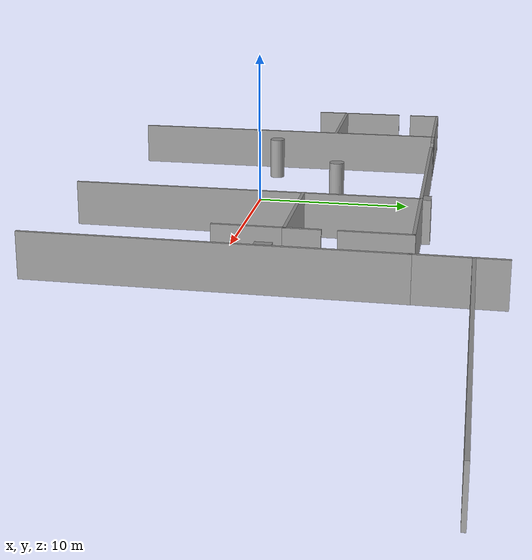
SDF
<sdf version="1.6">
 <world name="default">
  <model name="grey_wall_0_clone_0_0_clone_clone">
   <link name="link">
    <pose>-0.251263 -0.001927 1.4 0 -0 0</pose>
    <inertial>
     <mass>1</mass>
     <inertia><ixx>1</ixx><ixy>0</ixy><ixz>0</ixz><iyy>1</iyy><iyz>0</iyz><izz>1</izz></inertia>
    </inertial>
    <visual name="visual">
     <cast_shadows>0</cast_shadows>
     <geometry><box><size>7.4 0.2 2.8</size></box></geometry>
     <material>
      <script>
       <uri>model://grey_wall/materials/scripts</uri>
       <uri>model://grey_wall/materials/textures</uri>
       <name>vrc/grey_wall</name>
      </script>
      <ambient>1 1 1 1</ambient>
      <diffuse>1 1 1 1</diffuse>
      <specular>0 0 0 1</specular>
      <emissive>0 0 0 1</emissive>
      <shader type="vertex"><normal_map>__default__</normal_map></shader>
     </material>
    </visual>
    <collision name="collision">
     <geometry><box><size>7.4 0.2 2.8</size></box></geometry>
     <surface>
      <friction>
       <ode><mu>1</mu><mu2>1</mu2><fdir1>0 0 0</fdir1><slip1>0</slip1><slip2>0</slip2></ode>
       <torsional>
        <coefficient>1</coefficient>
        <patch_radius>0</patch_radius>
        <surface_radius>0</surface_radius>
        <use_patch_radius>1</use_patch_radius>
        <ode><slip>0</slip></ode>
       </torsional>
      </friction>
      <bounce><restitution_coefficient>0</restitution_coefficient><threshold>1e+06</threshold></bounce>
      <contact>
       <collide_without_contact>0</collide_without_contact>
       <collide_without_contact_bitmask>1</collide_without_contact_bitmask>
       <collide_bitmask>1</collide_bitmask>
       <ode>
        <soft_cfm>0</soft_cfm>
        <soft_erp>0.2</soft_erp>
        <kp>1e+13</kp>
        <kd>1</kd>
        <max_vel>0.01</max_vel>
        <min_depth>0</min_depth>
       </ode>
       <bullet>
        <split_impulse>1</split_impulse>
        <split_impulse_penetration_threshold>-0.01</split_impulse_penetration_threshold>
        <soft_cfm>0</soft_cfm>
        <soft_erp>0.2</soft_erp>
        <kp>1e+13</kp>
        <kd>1</kd>
       </bullet>
      </contact>
     </surface>
    </collision>
   </link>
   <static>1</static>
   <pose>11.4392 4.08832 0 0 -0 0</pose>
  </model>
  <model name="grey_wall_0_clone_0_0_clone_clone_clone">
   <link name="link">
    <pose>-0.251263 -0.001927 1.4 0 -0 0</pose>
    <inertial>
     <mass>1</mass>
     <inertia><ixx>1</ixx><ixy>0</ixy><ixz>0</ixz><iyy>1</iyy><iyz>0</iyz><izz>1</izz></inertia>
    </inertial>
    <visual name="visual">
     <cast_shadows>0</cast_shadows>
     <geometry><box><size>7.4 0.2 2.8</size></box></geometry>
     <material>
      <script>
       <uri>model://grey_wall/materials/scripts</uri>
       <uri>model://grey_wall/materials/textures</uri>
       <name>vrc/grey_wall</name>
      </script>
      <ambient>1 1 1 1</ambient>
      <diffuse>1 1 1 1</diffuse>
      <specular>0 0 0 1</specular>
      <emissive>0 0 0 1</emissive>
      <shader type="vertex"><normal_map>__default__</normal_map></shader>
     </material>
    </visual>
    <collision name="collision">
     <geometry><box><size>7.4 0.2 2.8</size></box></geometry>
     <surface>
      <friction>
       <ode><mu>1</mu><mu2>1</mu2><fdir1>0 0 0</fdir1><slip1>0</slip1><slip2>0</slip2></ode>
       <torsional>
        <coefficient>1</coefficient>
        <patch_radius>0</patch_radius>
        <surface_radius>0</surface_radius>
        <use_patch_radius>1</use_patch_radius>
        <ode><slip>0</slip></ode>
       </torsional>
      </friction>
      <bounce><restitution_coefficient>0</restitution_coefficient><threshold>1e+06</threshold></bounce>
      <contact>
       <collide_without_contact>0</collide_without_contact>
       <collide_without_contact_bitmask>1</collide_without_contact_bitmask>
       <collide_bitmask>1</collide_bitmask>
       <ode>
        <soft_cfm>0</soft_cfm>
        <soft_erp>0.2</soft_erp>
        <kp>1e+13</kp>
        <kd>1</kd>
        <max_vel>0.01</max_vel>
        <min_depth>0</min_depth>
       </ode>
       <bullet>
        <split_impulse>1</split_impulse>
        <split_impulse_penetration_threshold>-0.01</split_impulse_penetration_threshold>
        <soft_cfm>0</soft_cfm>
        <soft_erp>0.2</soft_erp>
        <kp>1e+13</kp>
        <kd>1</kd>
       </bullet>
      </contact>
     </surface>
    </collision>
   </link>
   <static>1</static>
   <pose>11.4788 11.2922 0 0 -0 0</pose>
  </model>
  <model name="g2_clone_0_0_clone">
   <link name="link">
    <pose>0 0 1.4 0 -0 0</pose>
    <inertial>
     <mass>1</mass>
     <inertia><ixx>1</ixx><ixy>0</ixy><ixz>0</ixz><iyy>1</iyy><iyz>0</iyz><izz>1</izz></inertia>
    </inertial>
    <visual name="visual">
     <cast_shadows>0</cast_shadows>
     <geometry><box><size>21.8 0.2 2.8</size></box></geometry>
     <material>
      <script>
       <uri>model://grey_wall/materials/scripts</uri>
       <uri>model://grey_wall/materials/textures</uri>
       <name>vrc/grey_wall</name>
      </script>
      <ambient>1 1 1 1</ambient>
      <diffuse>1 1 1 1</diffuse>
      <specular>0 0 0 1</specular>
      <emissive>0 0 0 1</emissive>
      <shader type="vertex"><normal_map>__default__</normal_map></shader>
     </material>
    </visual>
    <collision name="collision">
     <geometry><box><size>21.8 0.2 2.8</size></box></geometry>
     <surface>
      <friction>
       <ode><mu>1</mu><mu2>1</mu2><fdir1>0 0 0</fdir1><slip1>0</slip1><slip2>0</slip2></ode>
       <torsional>
        <coefficient>1</coefficient>
        <patch_radius>0</patch_radius>
        <surface_radius>0</surface_radius>
        <use_patch_radius>1</use_patch_radius>
        <ode><slip>0</slip></ode>
       </torsional>
      </friction>
      <bounce><restitution_coefficient>0</restitution_coefficient><threshold>1e+06</threshold></bounce>
      <contact>
       <collide_without_contact>0</collide_without_contact>
       <collide_without_contact_bitmask>1</collide_without_contact_bitmask>
       <collide_bitmask>1</collide_bitmask>
       <ode>
        <soft_cfm>0</soft_cfm>
        <soft_erp>0.2</soft_erp>
        <kp>1e+13</kp>
        <kd>1</kd>
        <max_vel>0.01</max_vel>
        <min_depth>0</min_depth>
       </ode>
       <bullet>
        <split_impulse>1</split_impulse>
        <split_impulse_penetration_threshold>-0.01</split_impulse_penetration_threshold>
        <soft_cfm>0</soft_cfm>
        <soft_erp>0.2</soft_erp>
        <kp>1e+13</kp>
        <kd>1</kd>
       </bullet>
      </contact>
     </surface>
    </collision>
   </link>
   <static>1</static>
   <pose>-9.04445 0.475213 0 0 0 -1.57584</pose>
  </model>
  <model name="g2_clone_0_0_0">
   <link name="link">
    <pose>0 0 1.4 0 -0 0</pose>
    <inertial>
     <mass>1</mass>
     <inertia><ixx>1</ixx><ixy>0</ixy><ixz>0</ixz><iyy>1</iyy><iyz>0</iyz><izz>1</izz></inertia>
    </inertial>
    <visual name="visual">
     <cast_shadows>0</cast_shadows>
     <geometry><box><size>21.8 0.2 2.8</size></box></geometry>
     <material>
      <script>
       <uri>model://grey_wall/materials/scripts</uri>
       <uri>model://grey_wall/materials/textures</uri>
       <name>vrc/grey_wall</name>
      </script>
      <ambient>1 1 1 1</ambient>
      <diffuse>1 1 1 1</diffuse>
      <specular>0 0 0 1</specular>
      <emissive>0 0 0 1</emissive>
      <shader type="vertex"><normal_map>__default__</normal_map></shader>
     </material>
    </visual>
    <collision name="collision">
     <geometry><box><size>21.8 0.2 2.8</size></box></geometry>
     <surface>
      <friction>
       <ode><mu>1</mu><mu2>1</mu2><fdir1>0 0 0</fdir1><slip1>0</slip1><slip2>0</slip2></ode>
       <torsional>
        <coefficient>1</coefficient>
        <patch_radius>0</patch_radius>
        <surface_radius>0</surface_radius>
        <use_patch_radius>1</use_patch_radius>
        <ode><slip>0</slip></ode>
       </torsional>
      </friction>
      <bounce><restitution_coefficient>0</restitution_coefficient><threshold>1e+06</threshold></bounce>
      <contact>
       <collide_without_contact>0</collide_without_contact>
       <collide_without_contact_bitmask>1</collide_without_contact_bitmask>
       <collide_bitmask>1</collide_bitmask>
       <ode>
        <soft_cfm>0</soft_cfm>
        <soft_erp>0.2</soft_erp>
        <kp>1e+13</kp>
        <kd>1</kd>
        <max_vel>0.01</max_vel>
        <min_depth>0</min_depth>
       </ode>
       <bullet>
        <split_impulse>1</split_impulse>
        <split_impulse_penetration_threshold>-0.01</split_impulse_penetration_threshold>
        <soft_cfm>0</soft_cfm>
        <soft_erp>0.2</soft_erp>
        <kp>1e+13</kp>
        <kd>1</kd>
       </bullet>
      </contact>
     </surface>
    </collision>
   </link>
   <static>1</static>
   <pose>7.54974 0.473365 0 0 0 -1.57584</pose>
  </model>
  <model name="grey_wall_0_0_clone_0">
   <link name="link">
    <pose>0 0 1.4 0 -0 0</pose>
    <inertial>
     <mass>1</mass>
     <inertia><ixx>1</ixx><ixy>0</ixy><ixz>0</ixz><iyy>1</iyy><iyz>0</iyz><izz>1</izz></inertia>
    </inertial>
    <visual name="visual">
     <cast_shadows>0</cast_shadows>
     <geometry><box><size>7.4 0.2 2.8</size></box></geometry>
     <material>
      <script>
       <uri>model://grey_wall/materials/scripts</uri>
       <uri>model://grey_wall/materials/textures</uri>
       <name>vrc/grey_wall</name>
      </script>
      <ambient>1 1 1 1</ambient>
      <diffuse>1 1 1 1</diffuse>
      <specular>0 0 0 1</specular>
      <emissive>0 0 0 1</emissive>
      <shader type="vertex"><normal_map>__default__</normal_map></shader>
     </material>
    </visual>
    <collision name="collision">
     <geometry><box><size>7.4 0.2 2.8</size></box></geometry>
     <surface>
      <friction>
       <ode><mu>1</mu><mu2>1</mu2><fdir1>0 0 0</fdir1><slip1>0</slip1><slip2>0</slip2></ode>
       <torsional>
        <coefficient>1</coefficient>
        <patch_radius>0</patch_radius>
        <surface_radius>0</surface_radius>
        <use_patch_radius>1</use_patch_radius>
        <ode><slip>0</slip></ode>
       </torsional>
      </friction>
      <bounce><restitution_coefficient>0</restitution_coefficient><threshold>1e+06</threshold></bounce>
      <contact>
       <collide_without_contact>0</collide_without_contact>
       <collide_without_contact_bitmask>1</collide_without_contact_bitmask>
       <collide_bitmask>1</collide_bitmask>
       <ode>
        <soft_cfm>0</soft_cfm>
        <soft_erp>0.2</soft_erp>
        <kp>1e+13</kp>
        <kd>1</kd>
        <max_vel>0.01</max_vel>
        <min_depth>0</min_depth>
       </ode>
       <bullet>
        <split_impulse>1</split_impulse>
        <split_impulse_penetration_threshold>-0.01</split_impulse_penetration_threshold>
        <soft_cfm>0</soft_cfm>
        <soft_erp>0.2</soft_erp>
        <kp>1e+13</kp>
        <kd>1</kd>
       </bullet>
      </contact>
     </surface>
    </collision>
   </link>
   <static>1</static>
   <pose>-12.6294 4.10196 0 0 -0 0</pose>
  </model>
  <model name="grey_wall_0_0_clone_1">
   <link name="link">
    <pose>0 0 1.4 0 -0 0</pose>
    <inertial>
     <mass>1</mass>
     <inertia><ixx>1</ixx><ixy>0</ixy><ixz>0</ixz><iyy>1</iyy><iyz>0</iyz><izz>1</izz></inertia>
    </inertial>
    <visual name="visual">
     <cast_shadows>0</cast_shadows>
     <geometry><box><size>7.4 0.2 2.8</size></box></geometry>
     <material>
      <script>
       <uri>model://grey_wall/materials/scripts</uri>
       <uri>model://grey_wall/materials/textures</uri>
       <name>vrc/grey_wall</name>
      </script>
      <ambient>1 1 1 1</ambient>
      <diffuse>1 1 1 1</diffuse>
      <specular>0 0 0 1</specular>
      <emissive>0 0 0 1</emissive>
      <shader type="vertex"><normal_map>__default__</normal_map></shader>
     </material>
    </visual>
    <collision name="collision">
     <geometry><box><size>7.4 0.2 2.8</size></box></geometry>
     <surface>
      <friction>
       <ode><mu>1</mu><mu2>1</mu2><fdir1>0 0 0</fdir1><slip1>0</slip1><slip2>0</slip2></ode>
       <torsional>
        <coefficient>1</coefficient>
        <patch_radius>0</patch_radius>
        <surface_radius>0</surface_radius>
        <use_patch_radius>1</use_patch_radius>
        <ode><slip>0</slip></ode>
       </torsional>
      </friction>
      <bounce><restitution_coefficient>0</restitution_coefficient><threshold>1e+06</threshold></bounce>
      <contact>
       <collide_without_contact>0</collide_without_contact>
       <collide_without_contact_bitmask>1</collide_without_contact_bitmask>
       <collide_bitmask>1</collide_bitmask>
       <ode>
        <soft_cfm>0</soft_cfm>
        <soft_erp>0.2</soft_erp>
        <kp>1e+13</kp>
        <kd>1</kd>
        <max_vel>0.01</max_vel>
        <min_depth>0</min_depth>
       </ode>
       <bullet>
        <split_impulse>1</split_impulse>
        <split_impulse_penetration_threshold>-0.01</split_impulse_penetration_threshold>
        <soft_cfm>0</soft_cfm>
        <soft_erp>0.2</soft_erp>
        <kp>1e+13</kp>
        <kd>1</kd>
       </bullet>
      </contact>
     </surface>
    </collision>
   </link>
   <static>1</static>
   <pose>-12.5933 11.2689 0 0 -0 0</pose>
  </model>
  <model name="g3_clone_clone_0_clone_0_0_0_0_0_0_clone_clone_clone_0_clone_0_clone_0_clone_0">
   <link name="link">
    <pose>1.55996 -1.33829 1.4 0 -0 0.001589</pose>
    <inertial>
     <mass>1</mass>
     <inertia><ixx>1</ixx><ixy>0</ixy><ixz>0</ixz><iyy>1</iyy><iyz>0</iyz><izz>1</izz></inertia>
    </inertial>
    <visual name="visual">
     <cast_shadows>0</cast_shadows>
     <geometry><box><size>2 0.2 2.8</size></box></geometry>
     <material>
      <script>
       <uri>model://grey_wall/materials/scripts</uri>
       <uri>model://grey_wall/materials/textures</uri>
       <name>vrc/grey_wall</name>
      </script>
      <ambient>1 1 1 1</ambient>
      <diffuse>1 1 1 1</diffuse>
      <specular>0 0 0 1</specular>
      <emissive>0 0 0 1</emissive>
      <shader type="vertex"><normal_map>__default__</normal_map></shader>
     </material>
    </visual>
    <collision name="collision">
     <geometry><box><size>2 0.2 2.8</size></box></geometry>
     <surface>
      <friction>
       <ode><mu>1</mu><mu2>1</mu2><fdir1>0 0 0</fdir1><slip1>0</slip1><slip2>0</slip2></ode>
       <torsional>
        <coefficient>1</coefficient>
        <patch_radius>0</patch_radius>
        <surface_radius>0</surface_radius>
        <use_patch_radius>1</use_patch_radius>
        <ode><slip>0</slip></ode>
       </torsional>
      </friction>
      <bounce><restitution_coefficient>0</restitution_coefficient><threshold>1e+06</threshold></bounce>
      <contact>
       <collide_without_contact>0</collide_without_contact>
       <collide_without_contact_bitmask>1</collide_without_contact_bitmask>
       <collide_bitmask>1</collide_bitmask>
       <ode>
        <soft_cfm>0</soft_cfm>
        <soft_erp>0.2</soft_erp>
        <kp>1e+13</kp>
        <kd>1</kd>
        <max_vel>0.01</max_vel>
        <min_depth>0</min_depth>
       </ode>
       <bullet>
        <split_impulse>1</split_impulse>
        <split_impulse_penetration_threshold>-0.01</split_impulse_penetration_threshold>
        <soft_cfm>0</soft_cfm>
        <soft_erp>0.2</soft_erp>
        <kp>1e+13</kp>
        <kd>1</kd>
       </bullet>
      </contact>
     </surface>
    </collision>
   </link>
   <static>1</static>
   <pose>-9.66867 12.5986 0 0 -0 0.011271</pose>
  </model>
  <model name="g1_clone_1_1_0">
   <link name="link">
    <pose>0.251458 0.000378 1.4 0 -0 0</pose>
    <inertial>
     <mass>1</mass>
     <inertia><ixx>1</ixx><ixy>0</ixy><ixz>0</ixz><iyy>1</iyy><iyz>0</iyz><izz>1</izz></inertia>
    </inertial>
    <visual name="visual">
     <cast_shadows>0</cast_shadows>
     <geometry><box><size>13.5 0.2 2.8</size></box></geometry>
     <material>
      <script>
       <uri>model://grey_wall/materials/scripts</uri>
       <uri>model://grey_wall/materials/textures</uri>
       <name>vrc/grey_wall</name>
      </script>
      <ambient>1 1 1 1</ambient>
      <diffuse>1 1 1 1</diffuse>
      <specular>0 0 0 1</specular>
      <emissive>0 0 0 1</emissive>
      <shader type="vertex"><normal_map>__default__</normal_map></shader>
     </material>
    </visual>
    <collision name="collision">
     <geometry><box><size>13.5 0.2 2.8</size></box></geometry>
     <surface>
      <friction>
       <ode><mu>1</mu><mu2>1</mu2><fdir1>0 0 0</fdir1><slip1>0</slip1><slip2>0</slip2></ode>
       <torsional>
        <coefficient>1</coefficient>
        <patch_radius>0</patch_radius>
        <surface_radius>0</surface_radius>
        <use_patch_radius>1</use_patch_radius>
        <ode><slip>0</slip></ode>
       </torsional>
      </friction>
      <bounce><restitution_coefficient>0</restitution_coefficient><threshold>1e+06</threshold></bounce>
      <contact>
       <collide_without_contact>0</collide_without_contact>
       <collide_without_contact_bitmask>1</collide_without_contact_bitmask>
       <collide_bitmask>1</collide_bitmask>
       <ode>
        <soft_cfm>0</soft_cfm>
        <soft_erp>0.2</soft_erp>
        <kp>1e+13</kp>
        <kd>1</kd>
        <max_vel>0.01</max_vel>
        <min_depth>0</min_depth>
       </ode>
       <bullet>
        <split_impulse>1</split_impulse>
        <split_impulse_penetration_threshold>-0.01</split_impulse_penetration_threshold>
        <soft_cfm>0</soft_cfm>
        <soft_erp>0.2</soft_erp>
        <kp>1e+13</kp>
        <kd>1</kd>
       </bullet>
      </contact>
     </surface>
    </collision>
   </link>
   <static>1</static>
   <pose>0.70866 11.287 0 0 -0 0</pose>
  </model>
  <model name="g2_clone_0_0_clone_clone_clone">
   <link name="link">
    <pose>0 0 1.4 0 -0 0</pose>
    <inertial>
     <mass>1</mass>
     <inertia><ixx>1</ixx><ixy>0</ixy><ixz>0</ixz><iyy>1</iyy><iyz>0</iyz><izz>1</izz></inertia>
    </inertial>
    <visual name="visual">
     <cast_shadows>0</cast_shadows>
     <geometry><box><size>21.8 0.2 2.8</size></box></geometry>
     <material>
      <script>
       <uri>model://grey_wall/materials/scripts</uri>
       <uri>model://grey_wall/materials/textures</uri>
       <name>vrc/grey_wall</name>
      </script>
      <ambient>1 1 1 1</ambient>
      <diffuse>1 1 1 1</diffuse>
      <specular>0 0 0 1</specular>
      <emissive>0 0 0 1</emissive>
      <shader type="vertex"><normal_map>__default__</normal_map></shader>
     </material>
    </visual>
    <collision name="collision">
     <geometry><box><size>21.8 0.2 2.8</size></box></geometry>
     <surface>
      <friction>
       <ode><mu>1</mu><mu2>1</mu2><fdir1>0 0 0</fdir1><slip1>0</slip1><slip2>0</slip2></ode>
       <torsional>
        <coefficient>1</coefficient>
        <patch_radius>0</patch_radius>
        <surface_radius>0</surface_radius>
        <use_patch_radius>1</use_patch_radius>
        <ode><slip>0</slip></ode>
       </torsional>
      </friction>
      <bounce><restitution_coefficient>0</restitution_coefficient><threshold>1e+06</threshold></bounce>
      <contact>
       <collide_without_contact>0</collide_without_contact>
       <collide_without_contact_bitmask>1</collide_without_contact_bitmask>
       <collide_bitmask>1</collide_bitmask>
       <ode>
        <soft_cfm>0</soft_cfm>
        <soft_erp>0.2</soft_erp>
        <kp>1e+13</kp>
        <kd>1</kd>
        <max_vel>0.01</max_vel>
        <min_depth>0</min_depth>
       </ode>
       <bullet>
        <split_impulse>1</split_impulse>
        <split_impulse_penetration_threshold>-0.01</split_impulse_penetration_threshold>
        <soft_cfm>0</soft_cfm>
        <soft_erp>0.2</soft_erp>
        <kp>1e+13</kp>
        <kd>1</kd>
       </bullet>
      </contact>
     </surface>
    </collision>
   </link>
   <static>1</static>
   <pose>18.07 0.480125 0 0 0 -1.57584</pose>
  </model>
  <model name="g3_clone_clone_0_clone_0_0_0_0_0_0_clone_clone_clone_0_clone_0_clone_1_0">
   <link name="link">
    <pose>0.277892 -0.062462 1.4 0 -0 0</pose>
    <inertial>
     <mass>1</mass>
     <inertia><ixx>1</ixx><ixy>0</ixy><ixz>0</ixz><iyy>1</iyy><iyz>0</iyz><izz>1</izz></inertia>
    </inertial>
    <visual name="visual">
     <cast_shadows>0</cast_shadows>
     <geometry><box><size>2.2 0.2 2.8</size></box></geometry>
     <material>
      <script>
       <uri>model://grey_wall/materials/scripts</uri>
       <uri>model://grey_wall/materials/textures</uri>
       <name>vrc/grey_wall</name>
      </script>
      <ambient>1 1 1 1</ambient>
      <diffuse>1 1 1 1</diffuse>
      <specular>0 0 0 1</specular>
      <emissive>0 0 0 1</emissive>
      <shader type="vertex"><normal_map>__default__</normal_map></shader>
     </material>
    </visual>
    <collision name="collision">
     <geometry><box><size>2.2 0.2 2.8</size></box></geometry>
     <surface>
      <friction>
       <ode><mu>1</mu><mu2>1</mu2><fdir1>0 0 0</fdir1><slip1>0</slip1><slip2>0</slip2></ode>
       <torsional>
        <coefficient>1</coefficient>
        <patch_radius>0</patch_radius>
        <surface_radius>0</surface_radius>
        <use_patch_radius>1</use_patch_radius>
        <ode><slip>0</slip></ode>
       </torsional>
      </friction>
      <bounce><restitution_coefficient>0</restitution_coefficient><threshold>1e+06</threshold></bounce>
      <contact>
       <collide_without_contact>0</collide_without_contact>
       <collide_without_contact_bitmask>1</collide_without_contact_bitmask>
       <collide_bitmask>1</collide_bitmask>
       <ode>
        <soft_cfm>0</soft_cfm>
        <soft_erp>0.2</soft_erp>
        <kp>1e+13</kp>
        <kd>1</kd>
        <max_vel>0.01</max_vel>
        <min_depth>0</min_depth>
       </ode>
       <bullet>
        <split_impulse>1</split_impulse>
        <split_impulse_penetration_threshold>-0.01</split_impulse_penetration_threshold>
        <soft_cfm>0</soft_cfm>
        <soft_erp>0.2</soft_erp>
        <kp>1e+13</kp>
        <kd>1</kd>
       </bullet>
      </contact>
     </surface>
    </collision>
   </link>
   <static>1</static>
   <pose>-16.1363 10.5498 0 0 0 -1.57614</pose>
  </model>
  <model name="g3_clone_clone_0_0_0_0_0_clone_0_clone_0_clone_2_clone_0_clone_0">
   <link name="link">
    <pose>0.7232 0.251992 1.4 0 -0 0</pose>
    <inertial>
     <mass>1</mass>
     <inertia><ixx>1</ixx><ixy>0</ixy><ixz>0</ixz><iyy>1</iyy><iyz>0</iyz><izz>1</izz></inertia>
    </inertial>
    <visual name="visual">
     <cast_shadows>0</cast_shadows>
     <geometry><box><size>4.3 0.2 2.8</size></box></geometry>
     <material>
      <script>
       <uri>model://grey_wall/materials/scripts</uri>
       <uri>model://grey_wall/materials/textures</uri>
       <name>vrc/grey_wall</name>
      </script>
      <ambient>1 1 1 1</ambient>
      <diffuse>1 1 1 1</diffuse>
      <specular>0 0 0 1</specular>
      <emissive>0 0 0 1</emissive>
      <shader type="vertex"><normal_map>__default__</normal_map></shader>
     </material>
    </visual>
    <collision name="collision">
     <geometry><box><size>4.3 0.2 2.8</size></box></geometry>
     <surface>
      <friction>
       <ode><mu>1</mu><mu2>1</mu2><fdir1>0 0 0</fdir1><slip1>0</slip1><slip2>0</slip2></ode>
       <torsional>
        <coefficient>1</coefficient>
        <patch_radius>0</patch_radius>
        <surface_radius>0</surface_radius>
        <use_patch_radius>1</use_patch_radius>
        <ode><slip>0</slip></ode>
       </torsional>
      </friction>
      <bounce><restitution_coefficient>0</restitution_coefficient><threshold>1e+06</threshold></bounce>
      <contact>
       <collide_without_contact>0</collide_without_contact>
       <collide_without_contact_bitmask>1</collide_without_contact_bitmask>
       <collide_bitmask>1</collide_bitmask>
       <ode>
        <soft_cfm>0</soft_cfm>
        <soft_erp>0.2</soft_erp>
        <kp>1e+13</kp>
        <kd>1</kd>
        <max_vel>0.01</max_vel>
        <min_depth>0</min_depth>
       </ode>
       <bullet>
        <split_impulse>1</split_impulse>
        <split_impulse_penetration_threshold>-0.01</split_impulse_penetration_threshold>
        <soft_cfm>0</soft_cfm>
        <soft_erp>0.2</soft_erp>
        <kp>1e+13</kp>
        <kd>1</kd>
       </bullet>
      </contact>
     </surface>
    </collision>
   </link>
   <static>1</static>
   <pose>-16.4688 6.86867 0 0 0 -1.57728</pose>
  </model>
  <model name="g3_clone_clone_0_clone_0_0_0_0_0_0_clone_clone_clone_0_clone_0_clone_1_clone_0_clone_clone">
   <link name="link">
    <pose>0.181182 -0.058849 1.4 0 -0 0</pose>
    <inertial>
     <mass>1</mass>
     <inertia><ixx>1</ixx><ixy>0</ixy><ixz>0</ixz><iyy>1</iyy><iyz>0</iyz><izz>1</izz></inertia>
    </inertial>
    <visual name="visual">
     <cast_shadows>0</cast_shadows>
     <geometry><box><size>3.5 0.2 2.8</size></box></geometry>
     <material>
      <script>
       <uri>model://grey_wall/materials/scripts</uri>
       <uri>model://grey_wall/materials/textures</uri>
       <name>vrc/grey_wall</name>
      </script>
      <ambient>1 1 1 1</ambient>
      <diffuse>1 1 1 1</diffuse>
      <specular>0 0 0 1</specular>
      <emissive>0 0 0 1</emissive>
      <shader type="vertex"><normal_map>__default__</normal_map></shader>
     </material>
    </visual>
    <collision name="collision">
     <geometry><box><size>3.5 0.2 2.8</size></box></geometry>
     <surface>
      <friction>
       <ode><mu>1</mu><mu2>1</mu2><fdir1>0 0 0</fdir1><slip1>0</slip1><slip2>0</slip2></ode>
       <torsional>
        <coefficient>1</coefficient>
        <patch_radius>0</patch_radius>
        <surface_radius>0</surface_radius>
        <use_patch_radius>1</use_patch_radius>
        <ode><slip>0</slip></ode>
       </torsional>
      </friction>
      <bounce><restitution_coefficient>0</restitution_coefficient><threshold>1e+06</threshold></bounce>
      <contact>
       <collide_without_contact>0</collide_without_contact>
       <collide_without_contact_bitmask>1</collide_without_contact_bitmask>
       <collide_bitmask>1</collide_bitmask>
       <ode>
        <soft_cfm>0</soft_cfm>
        <soft_erp>0.2</soft_erp>
        <kp>1e+13</kp>
        <kd>1</kd>
        <max_vel>0.01</max_vel>
        <min_depth>0</min_depth>
       </ode>
       <bullet>
        <split_impulse>1</split_impulse>
        <split_impulse_penetration_threshold>-0.01</split_impulse_penetration_threshold>
        <soft_cfm>0</soft_cfm>
        <soft_erp>0.2</soft_erp>
        <kp>1e+13</kp>
        <kd>1</kd>
       </bullet>
      </contact>
     </surface>
    </collision>
   </link>
   <static>1</static>
   <pose>18.185 13.1082 0 0 0 -1.57614</pose>
  </model>
  <model name="g3_clone_clone_0_clone_0_0_0_0_0_0_clone_clone_clone_0_clone_0_clone_1_0_clone">
   <link name="link">
    <pose>0.277892 -0.062462 1.4 0 -0 0</pose>
    <inertial>
     <mass>1</mass>
     <inertia><ixx>1</ixx><ixy>0</ixy><ixz>0</ixz><iyy>1</iyy><iyz>0</iyz><izz>1</izz></inertia>
    </inertial>
    <visual name="visual">
     <cast_shadows>0</cast_shadows>
     <geometry><box><size>2.2 0.2 2.8</size></box></geometry>
     <material>
      <script>
       <uri>model://grey_wall/materials/scripts</uri>
       <uri>model://grey_wall/materials/textures</uri>
       <name>vrc/grey_wall</name>
      </script>
      <ambient>1 1 1 1</ambient>
      <diffuse>1 1 1 1</diffuse>
      <specular>0 0 0 1</specular>
      <emissive>0 0 0 1</emissive>
      <shader type="vertex"><normal_map>__default__</normal_map></shader>
     </material>
    </visual>
    <collision name="collision">
     <geometry><box><size>2.2 0.2 2.8</size></box></geometry>
     <surface>
      <friction>
       <ode><mu>1</mu><mu2>1</mu2><fdir1>0 0 0</fdir1><slip1>0</slip1><slip2>0</slip2></ode>
       <torsional>
        <coefficient>1</coefficient>
        <patch_radius>0</patch_radius>
        <surface_radius>0</surface_radius>
        <use_patch_radius>1</use_patch_radius>
        <ode><slip>0</slip></ode>
       </torsional>
      </friction>
      <bounce><restitution_coefficient>0</restitution_coefficient><threshold>1e+06</threshold></bounce>
      <contact>
       <collide_without_contact>0</collide_without_contact>
       <collide_without_contact_bitmask>1</collide_without_contact_bitmask>
       <collide_bitmask>1</collide_bitmask>
       <ode>
        <soft_cfm>0</soft_cfm>
        <soft_erp>0.2</soft_erp>
        <kp>1e+13</kp>
        <kd>1</kd>
        <max_vel>0.01</max_vel>
        <min_depth>0</min_depth>
       </ode>
       <bullet>
        <split_impulse>1</split_impulse>
        <split_impulse_penetration_threshold>-0.01</split_impulse_penetration_threshold>
        <soft_cfm>0</soft_cfm>
        <soft_erp>0.2</soft_erp>
        <kp>1e+13</kp>
        <kd>1</kd>
       </bullet>
      </contact>
     </surface>
    </collision>
   </link>
   <static>1</static>
   <pose>-16.1741 3.36962 0 0 0 -1.57614</pose>
  </model>
  <model name="g3_clone_clone_0_0_0_0_0_clone_0_clone_0_clone_2_clone_0_clone_0_clone_0">
   <link name="link">
    <pose>0.7232 0.251992 1.4 0 -0 0</pose>
    <inertial>
     <mass>1</mass>
     <inertia><ixx>1</ixx><ixy>0</ixy><ixz>0</ixz><iyy>1</iyy><iyz>0</iyz><izz>1</izz></inertia>
    </inertial>
    <visual name="visual">
     <cast_shadows>0</cast_shadows>
     <geometry><box><size>4.3 0.2 2.8</size></box></geometry>
     <material>
      <script>
       <uri>model://grey_wall/materials/scripts</uri>
       <uri>model://grey_wall/materials/textures</uri>
       <name>vrc/grey_wall</name>
      </script>
      <ambient>1 1 1 1</ambient>
      <diffuse>1 1 1 1</diffuse>
      <specular>0 0 0 1</specular>
      <emissive>0 0 0 1</emissive>
      <shader type="vertex"><normal_map>__default__</normal_map></shader>
     </material>
    </visual>
    <collision name="collision">
     <geometry><box><size>4.3 0.2 2.8</size></box></geometry>
     <surface>
      <friction>
       <ode><mu>1</mu><mu2>1</mu2><fdir1>0 0 0</fdir1><slip1>0</slip1><slip2>0</slip2></ode>
       <torsional>
        <coefficient>1</coefficient>
        <patch_radius>0</patch_radius>
        <surface_radius>0</surface_radius>
        <use_patch_radius>1</use_patch_radius>
        <ode><slip>0</slip></ode>
       </torsional>
      </friction>
      <bounce><restitution_coefficient>0</restitution_coefficient><threshold>1e+06</threshold></bounce>
      <contact>
       <collide_without_contact>0</collide_without_contact>
       <collide_without_contact_bitmask>1</collide_without_contact_bitmask>
       <collide_bitmask>1</collide_bitmask>
       <ode>
        <soft_cfm>0</soft_cfm>
        <soft_erp>0.2</soft_erp>
        <kp>1e+13</kp>
        <kd>1</kd>
        <max_vel>0.01</max_vel>
        <min_depth>0</min_depth>
       </ode>
       <bullet>
        <split_impulse>1</split_impulse>
        <split_impulse_penetration_threshold>-0.01</split_impulse_penetration_threshold>
        <soft_cfm>0</soft_cfm>
        <soft_erp>0.2</soft_erp>
        <kp>1e+13</kp>
        <kd>1</kd>
       </bullet>
      </contact>
     </surface>
    </collision>
   </link>
   <static>1</static>
   <pose>14.5679 9.9628 0 0 0 -1.57728</pose>
  </model>
  <model name="g3_clone_clone_0_clone_0_0_0_0_0_0_clone_clone_clone_0_clone_0_clone_1_0_clone_0">
   <link name="link">
    <pose>0.277892 -0.062462 1.4 0 -0 0</pose>
    <inertial>
     <mass>1</mass>
     <inertia><ixx>1</ixx><ixy>0</ixy><ixz>0</ixz><iyy>1</iyy><iyz>0</iyz><izz>1</izz></inertia>
    </inertial>
    <visual name="visual">
     <cast_shadows>0</cast_shadows>
     <geometry><box><size>2.2 0.2 2.8</size></box></geometry>
     <material>
      <script>
       <uri>model://grey_wall/materials/scripts</uri>
       <uri>model://grey_wall/materials/textures</uri>
       <name>vrc/grey_wall</name>
      </script>
      <ambient>1 1 1 1</ambient>
      <diffuse>1 1 1 1</diffuse>
      <specular>0 0 0 1</specular>
      <emissive>0 0 0 1</emissive>
      <shader type="vertex"><normal_map>__default__</normal_map></shader>
     </material>
    </visual>
    <collision name="collision">
     <geometry><box><size>2.2 0.2 2.8</size></box></geometry>
     <surface>
      <friction>
       <ode><mu>1</mu><mu2>1</mu2><fdir1>0 0 0</fdir1><slip1>0</slip1><slip2>0</slip2></ode>
       <torsional>
        <coefficient>1</coefficient>
        <patch_radius>0</patch_radius>
        <surface_radius>0</surface_radius>
        <use_patch_radius>1</use_patch_radius>
        <ode><slip>0</slip></ode>
       </torsional>
      </friction>
      <bounce><restitution_coefficient>0</restitution_coefficient><threshold>1e+06</threshold></bounce>
      <contact>
       <collide_without_contact>0</collide_without_contact>
       <collide_without_contact_bitmask>1</collide_without_contact_bitmask>
       <collide_bitmask>1</collide_bitmask>
       <ode>
        <soft_cfm>0</soft_cfm>
        <soft_erp>0.2</soft_erp>
        <kp>1e+13</kp>
        <kd>1</kd>
        <max_vel>0.01</max_vel>
        <min_depth>0</min_depth>
       </ode>
       <bullet>
        <split_impulse>1</split_impulse>
        <split_impulse_penetration_threshold>-0.01</split_impulse_penetration_threshold>
        <soft_cfm>0</soft_cfm>
        <soft_erp>0.2</soft_erp>
        <kp>1e+13</kp>
        <kd>1</kd>
       </bullet>
      </contact>
     </surface>
    </collision>
   </link>
   <static>1</static>
   <pose>14.8583 5.35559 0 0 0 -1.57614</pose>
  </model>
  <model name="g3_clone_clone_0_0_0_0_0_clone_0_clone_0_clone_2_clone_0_clone_0_clone_0_clone">
   <link name="link">
    <pose>0.7232 0.251992 1.4 0 -0 0</pose>
    <inertial>
     <mass>1</mass>
     <inertia><ixx>1</ixx><ixy>0</ixy><ixz>0</ixz><iyy>1</iyy><iyz>0</iyz><izz>1</izz></inertia>
    </inertial>
    <visual name="visual">
     <cast_shadows>0</cast_shadows>
     <geometry><box><size>4.3 0.2 2.8</size></box></geometry>
     <material>
      <script>
       <uri>model://grey_wall/materials/scripts</uri>
       <uri>model://grey_wall/materials/textures</uri>
       <name>vrc/grey_wall</name>
      </script>
      <ambient>1 1 1 1</ambient>
      <diffuse>1 1 1 1</diffuse>
      <specular>0 0 0 1</specular>
      <emissive>0 0 0 1</emissive>
      <shader type="vertex"><normal_map>__default__</normal_map></shader>
     </material>
    </visual>
    <collision name="collision">
     <geometry><box><size>4.3 0.2 2.8</size></box></geometry>
     <surface>
      <friction>
       <ode><mu>1</mu><mu2>1</mu2><fdir1>0 0 0</fdir1><slip1>0</slip1><slip2>0</slip2></ode>
       <torsional>
        <coefficient>1</coefficient>
        <patch_radius>0</patch_radius>
        <surface_radius>0</surface_radius>
        <use_patch_radius>1</use_patch_radius>
        <ode><slip>0</slip></ode>
       </torsional>
      </friction>
      <bounce><restitution_coefficient>0</restitution_coefficient><threshold>1e+06</threshold></bounce>
      <contact>
       <collide_without_contact>0</collide_without_contact>
       <collide_without_contact_bitmask>1</collide_without_contact_bitmask>
       <collide_bitmask>1</collide_bitmask>
       <ode>
        <soft_cfm>0</soft_cfm>
        <soft_erp>0.2</soft_erp>
        <kp>1e+13</kp>
        <kd>1</kd>
        <max_vel>0.01</max_vel>
        <min_depth>0</min_depth>
       </ode>
       <bullet>
        <split_impulse>1</split_impulse>
        <split_impulse_penetration_threshold>-0.01</split_impulse_penetration_threshold>
        <soft_cfm>0</soft_cfm>
        <soft_erp>0.2</soft_erp>
        <kp>1e+13</kp>
        <kd>1</kd>
       </bullet>
      </contact>
     </surface>
    </collision>
   </link>
   <static>1</static>
   <pose>14.5271 2.76111 0 0 0 -1.57728</pose>
  </model>
  <model name="g1_clone_1_1_0_clone_0_0_clone_0_0_clone">
   <link name="link">
    <pose>1.12208 9.77176 1.4 0 -0 0</pose>
    <inertial>
     <mass>1</mass>
     <inertia><ixx>1</ixx><ixy>0</ixy><ixz>0</ixz><iyy>1</iyy><iyz>0</iyz><izz>1</izz></inertia>
    </inertial>
    <visual name="visual">
     <cast_shadows>0</cast_shadows>
     <geometry><box><size>21.8 0.2 2.8</size></box></geometry>
     <material>
      <script>
       <uri>model://grey_wall/materials/scripts</uri>
       <uri>model://grey_wall/materials/textures</uri>
       <name>vrc/grey_wall</name>
      </script>
      <ambient>1 1 1 1</ambient>
      <diffuse>1 1 1 1</diffuse>
      <specular>0 0 0 1</specular>
      <emissive>0 0 0 1</emissive>
      <shader type="vertex"><normal_map>__default__</normal_map></shader>
     </material>
    </visual>
    <collision name="collision">
     <geometry><box><size>21.8 0.2 2.8</size></box></geometry>
     <surface>
      <friction>
       <ode><mu>1</mu><mu2>1</mu2><fdir1>0 0 0</fdir1><slip1>0</slip1><slip2>0</slip2></ode>
       <torsional>
        <coefficient>1</coefficient>
        <patch_radius>0</patch_radius>
        <surface_radius>0</surface_radius>
        <use_patch_radius>1</use_patch_radius>
        <ode><slip>0</slip></ode>
       </torsional>
      </friction>
      <bounce><restitution_coefficient>0</restitution_coefficient><threshold>1e+06</threshold></bounce>
      <contact>
       <collide_without_contact>0</collide_without_contact>
       <collide_without_contact_bitmask>1</collide_without_contact_bitmask>
       <collide_bitmask>1</collide_bitmask>
       <ode>
        <soft_cfm>0</soft_cfm>
        <soft_erp>0.2</soft_erp>
        <kp>1e+13</kp>
        <kd>1</kd>
        <max_vel>0.01</max_vel>
        <min_depth>0</min_depth>
       </ode>
       <bullet>
        <split_impulse>1</split_impulse>
        <split_impulse_penetration_threshold>-0.01</split_impulse_penetration_threshold>
        <soft_cfm>0</soft_cfm>
        <soft_erp>0.2</soft_erp>
        <kp>1e+13</kp>
        <kd>1</kd>
       </bullet>
      </contact>
     </surface>
    </collision>
   </link>
   <static>1</static>
   <pose>27.8078 4.80354 0 0 -0 0</pose>
  </model>
  <model name="g2_clone_0_0_0_clone_clone_0_0_clone_clone_0">
   <link name="link">
    <pose>-1.56505 3.70936 1.4 0 -0 0</pose>
    <inertial>
     <mass>1</mass>
     <inertia><ixx>1</ixx><ixy>0</ixy><ixz>0</ixz><iyy>1</iyy><iyz>0</iyz><izz>1</izz></inertia>
    </inertial>
    <visual name="visual">
     <cast_shadows>0</cast_shadows>
     <geometry><box><size>2 0.2 2.8</size></box></geometry>
     <material>
      <script>
       <uri>model://grey_wall/materials/scripts</uri>
       <uri>model://grey_wall/materials/textures</uri>
       <name>vrc/grey_wall</name>
      </script>
      <ambient>1 1 1 1</ambient>
      <diffuse>1 1 1 1</diffuse>
      <specular>0 0 0 1</specular>
      <emissive>0 0 0 1</emissive>
      <shader type="vertex"><normal_map>__default__</normal_map></shader>
     </material>
    </visual>
    <collision name="collision">
     <geometry><box><size>2 0.2 2.8</size></box></geometry>
     <surface>
      <friction>
       <ode><mu>1</mu><mu2>1</mu2><fdir1>0 0 0</fdir1><slip1>0</slip1><slip2>0</slip2></ode>
       <torsional>
        <coefficient>1</coefficient>
        <patch_radius>0</patch_radius>
        <surface_radius>0</surface_radius>
        <use_patch_radius>1</use_patch_radius>
        <ode><slip>0</slip></ode>
       </torsional>
      </friction>
      <bounce><restitution_coefficient>0</restitution_coefficient><threshold>1e+06</threshold></bounce>
      <contact>
       <collide_without_contact>0</collide_without_contact>
       <collide_without_contact_bitmask>1</collide_without_contact_bitmask>
       <collide_bitmask>1</collide_bitmask>
       <ode>
        <soft_cfm>0</soft_cfm>
        <soft_erp>0.2</soft_erp>
        <kp>1e+13</kp>
        <kd>1</kd>
        <max_vel>0.01</max_vel>
        <min_depth>0</min_depth>
       </ode>
       <bullet>
        <split_impulse>1</split_impulse>
        <split_impulse_penetration_threshold>-0.01</split_impulse_penetration_threshold>
        <soft_cfm>0</soft_cfm>
        <soft_erp>0.2</soft_erp>
        <kp>1e+13</kp>
        <kd>1</kd>
       </bullet>
      </contact>
     </surface>
    </collision>
   </link>
   <static>1</static>
   <pose>14.4217 13.9279 0 0 0 -1.57584</pose>
  </model>
  <model name="unit_cylinder_0_1_0_clone_0">
   <link name="link">
    <pose>0.876728 0.324661 0.817505 0 -0 0</pose>
    <inertial>
     <mass>1</mass>
     <inertia><ixx>0.145833</ixx><ixy>0</ixy><ixz>0</ixz><iyy>0.145833</iyy><iyz>0</iyz><izz>0.125</izz></inertia>
    </inertial>
    <visual name="visual">
     <geometry><cylinder><radius>0.5</radius><length>2.8</length></cylinder></geometry>
     <material>
      <script><name>Gazebo/Grey</name><uri>file://media/materials/scripts/gazebo.material</uri></script>
      <ambient>0.3 0.3 0.3 1</ambient>
      <diffuse>0.7 0.7 0.7 1</diffuse>
      <specular>0.01 0.01 0.01 1</specular>
      <emissive>0 0 0 1</emissive>
      <shader type="vertex"><normal_map>__default__</normal_map></shader>
     </material>
    </visual>
    <collision name="collision">
     <geometry><cylinder><radius>0.5</radius><length>2.8</length></cylinder></geometry>
     <surface>
      <friction>
       <ode><mu>1</mu><mu2>1</mu2><fdir1>0 0 0</fdir1><slip1>0</slip1><slip2>0</slip2></ode>
       <torsional>
        <coefficient>1</coefficient>
        <patch_radius>0</patch_radius>
        <surface_radius>0</surface_radius>
        <use_patch_radius>1</use_patch_radius>
        <ode><slip>0</slip></ode>
       </torsional>
      </friction>
      <bounce><restitution_coefficient>0</restitution_coefficient><threshold>1e+06</threshold></bounce>
      <contact>
       <collide_without_contact>0</collide_without_contact>
       <collide_without_contact_bitmask>1</collide_without_contact_bitmask>
       <collide_bitmask>1</collide_bitmask>
       <ode>
        <soft_cfm>0</soft_cfm>
        <soft_erp>0.2</soft_erp>
        <kp>1e+13</kp>
        <kd>1</kd>
        <max_vel>0.01</max_vel>
        <min_depth>0</min_depth>
       </ode>
       <bullet>
        <split_impulse>1</split_impulse>
        <split_impulse_penetration_threshold>-0.01</split_impulse_penetration_threshold>
        <soft_cfm>0</soft_cfm>
        <soft_erp>0.2</soft_erp>
        <kp>1e+13</kp>
        <kd>1</kd>
       </bullet>
      </contact>
     </surface>
    </collision>
   </link>
   <static>0</static>
   <pose>-1.15725 4.89299 0.582488 0 0 -6.9e-05</pose>
  </model>
  <model name="unit_cylinder_0_1_0_clone_3">
   <link name="link">
    <pose>0.876728 0.324661 0.817505 0 -0 0</pose>
    <inertial>
     <mass>1</mass>
     <inertia><ixx>0.145833</ixx><ixy>0</ixy><ixz>0</ixz><iyy>0.145833</iyy><iyz>0</iyz><izz>0.125</izz></inertia>
    </inertial>
    <visual name="visual">
     <geometry><cylinder><radius>0.5</radius><length>2.8</length></cylinder></geometry>
     <material>
      <script><name>Gazebo/Grey</name><uri>file://media/materials/scripts/gazebo.material</uri></script>
      <ambient>0.3 0.3 0.3 1</ambient>
      <diffuse>0.7 0.7 0.7 1</diffuse>
      <specular>0.01 0.01 0.01 1</specular>
      <emissive>0 0 0 1</emissive>
      <shader type="vertex"><normal_map>__default__</normal_map></shader>
     </material>
    </visual>
    <collision name="collision">
     <geometry><cylinder><radius>0.5</radius><length>2.8</length></cylinder></geometry>
     <surface>
      <friction>
       <ode><mu>1</mu><mu2>1</mu2><fdir1>0 0 0</fdir1><slip1>0</slip1><slip2>0</slip2></ode>
       <torsional>
        <coefficient>1</coefficient>
        <patch_radius>0</patch_radius>
        <surface_radius>0</surface_radius>
        <use_patch_radius>1</use_patch_radius>
        <ode><slip>0</slip></ode>
       </torsional>
      </friction>
      <bounce><restitution_coefficient>0</restitution_coefficient><threshold>1e+06</threshold></bounce>
      <contact>
       <collide_without_contact>0</collide_without_contact>
       <collide_without_contact_bitmask>1</collide_without_contact_bitmask>
       <collide_bitmask>1</collide_bitmask>
       <ode>
        <soft_cfm>0</soft_cfm>
        <soft_erp>0.2</soft_erp>
        <kp>1e+13</kp>
        <kd>1</kd>
        <max_vel>0.01</max_vel>
        <min_depth>0</min_depth>
       </ode>
       <bullet>
        <split_impulse>1</split_impulse>
        <split_impulse_penetration_threshold>-0.01</split_impulse_penetration_threshold>
        <soft_cfm>0</soft_cfm>
        <soft_erp>0.2</soft_erp>
        <kp>1e+13</kp>
        <kd>1</kd>
       </bullet>
      </contact>
     </surface>
    </collision>
   </link>
   <static>0</static>
   <pose>-7.16008 -0.185829 0.582488 0 0 -5e-05</pose>
  </model>
  <model name="unit_box_0_0_clone_0_0_clone_2_clone">
   <link name="link">
    <pose>-7.83659 0.075446 3.84331 0 -0 0</pose>
    <inertial>
     <mass>1</mass>
     <inertia>
      <ixx>0.166667</ixx>
      <ixy>0</ixy>
      <ixz>0</ixz>
      <iyy>0.166667</iyy>
      <iyz>0</iyz>
      <izz>0.166667</izz>
     </inertia>
    </inertial>
    <visual name="visual">
     <geometry><box><size>1 0.5 2.8</size></box></geometry>
     <material>
      <script><name>Gazebo/Grey</name><uri>file://media/materials/scripts/gazebo.material</uri></script>
      <ambient>0.3 0.3 0.3 1</ambient>
      <diffuse>0.7 0.7 0.7 1</diffuse>
      <specular>0.01 0.01 0.01 1</specular>
      <emissive>0 0 0 1</emissive>
      <shader type="vertex"><normal_map>__default__</normal_map></shader>
     </material>
    </visual>
    <collision name="collision">
     <geometry><box><size>1 0.5 2.8</size></box></geometry>
     <surface>
      <friction>
       <ode><mu>1</mu><mu2>1</mu2><fdir1>0 0 0</fdir1><slip1>0</slip1><slip2>0</slip2></ode>
       <torsional>
        <coefficient>1</coefficient>
        <patch_radius>0</patch_radius>
        <surface_radius>0</surface_radius>
        <use_patch_radius>1</use_patch_radius>
        <ode><slip>0</slip></ode>
       </torsional>
      </friction>
      <bounce><restitution_coefficient>0</restitution_coefficient><threshold>1e+06</threshold></bounce>
      <contact>
       <collide_without_contact>0</collide_without_contact>
       <collide_without_contact_bitmask>1</collide_without_contact_bitmask>
       <collide_bitmask>1</collide_bitmask>
       <ode>
        <soft_cfm>0</soft_cfm>
        <soft_erp>0.2</soft_erp>
        <kp>1e+13</kp>
        <kd>1</kd>
        <max_vel>0.01</max_vel>
        <min_depth>0</min_depth>
       </ode>
       <bullet>
        <split_impulse>1</split_impulse>
        <split_impulse_penetration_threshold>-0.01</split_impulse_penetration_threshold>
        <soft_cfm>0</soft_cfm>
        <soft_erp>0.2</soft_erp>
        <kp>1e+13</kp>
        <kd>1</kd>
       </bullet>
      </contact>
     </surface>
    </collision>
   </link>
   <static>0</static>
   <pose>15.2646 11.5829 -2.44332 0 2e-06 6.1e-05</pose>
  </model>
  <model name="unit_box_0_0_clone_0_0_clone_2_clone_0_0_clone_clone">
   <link name="link">
    <pose>-7.83659 0.075446 3.84331 0 -0 0</pose>
    <inertial>
     <mass>1</mass>
     <inertia>
      <ixx>0.166667</ixx>
      <ixy>0</ixy>
      <ixz>0</ixz>
      <iyy>0.166667</iyy>
      <iyz>0</iyz>
      <izz>0.166667</izz>
     </inertia>
    </inertial>
    <visual name="visual">
     <geometry><box><size>0.5 1 2.8</size></box></geometry>
     <material>
      <script><name>Gazebo/Grey</name><uri>file://media/materials/scripts/gazebo.material</uri></script>
      <ambient>0.3 0.3 0.3 1</ambient>
      <diffuse>0.7 0.7 0.7 1</diffuse>
      <specular>0.01 0.01 0.01 1</specular>
      <emissive>0 0 0 1</emissive>
      <shader type="vertex"><normal_map>__default__</normal_map></shader>
     </material>
    </visual>
    <collision name="collision">
     <geometry><box><size>0.5 1 2.8</size></box></geometry>
     <surface>
      <friction>
       <ode><mu>1</mu><mu2>1</mu2><fdir1>0 0 0</fdir1><slip1>0</slip1><slip2>0</slip2></ode>
       <torsional>
        <coefficient>1</coefficient>
        <patch_radius>0</patch_radius>
        <surface_radius>0</surface_radius>
        <use_patch_radius>1</use_patch_radius>
        <ode><slip>0</slip></ode>
       </torsional>
      </friction>
      <bounce><restitution_coefficient>0</restitution_coefficient><threshold>1e+06</threshold></bounce>
      <contact>
       <collide_without_contact>0</collide_without_contact>
       <collide_without_contact_bitmask>1</collide_without_contact_bitmask>
       <collide_bitmask>1</collide_bitmask>
       <ode>
        <soft_cfm>0</soft_cfm>
        <soft_erp>0.2</soft_erp>
        <kp>1e+13</kp>
        <kd>1</kd>
        <max_vel>0.01</max_vel>
        <min_depth>0</min_depth>
       </ode>
       <bullet>
        <split_impulse>1</split_impulse>
        <split_impulse_penetration_threshold>-0.01</split_impulse_penetration_threshold>
        <soft_cfm>0</soft_cfm>
        <soft_erp>0.2</soft_erp>
        <kp>1e+13</kp>
        <kd>1</kd>
       </bullet>
      </contact>
     </surface>
    </collision>
   </link>
   <static>0</static>
   <pose>25.5944 3.34967 -2.44331 0 -0 8.2e-05</pose>
  </model>
 </world>
</sdf>
